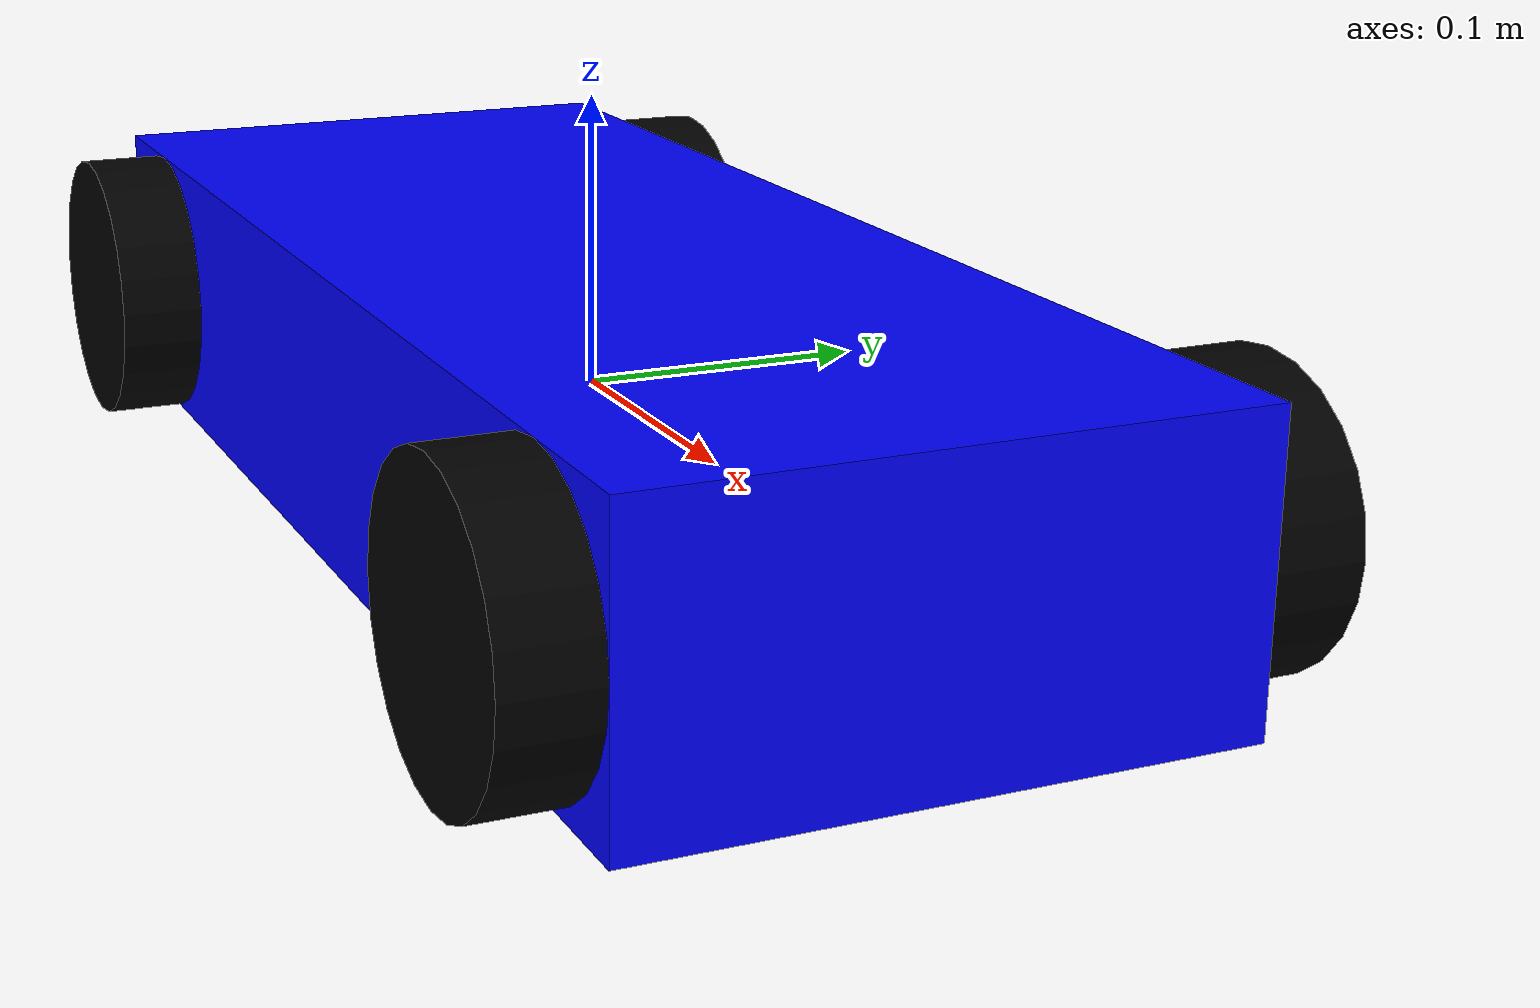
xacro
<?xml version="1.0"?>
<robot xmlns:xacro="http://www.ros.org/wiki/xacro">

    <xacro:include filename="inertial_macros.xacro"/>
<!-- Base Link -->
    <link name="base_link">
        <visual>
            <geometry>
                <box size="0.5 0.2 0.1"/>
            </geometry>
            <material name="blue">
                <color rgba="0 0 1 1"/>
            </material>
        </visual>
    </link>

  <!-- Front Left Wheel -->
    <link name="front_left_wheel">
        <visual>
            <geometry>
                <cylinder radius="0.05" length="0.04"/>
            </geometry>
            <material name="black">
                <color rgba="0 0 0 1"/>
            </material>
        </visual>
    </link>

  <!-- Front Right Wheel -->
    <link name="front_right_wheel">
        <visual>
            <geometry>
                <cylinder radius="0.05" length="0.04"/>
            </geometry>
            <material name="black">
                <color rgba="0 0 0 1"/>
            </material>
        </visual>
    </link>

  <!-- Rear Left Wheel -->
    <link name="rear_left_wheel">
        <visual>
            <geometry>
                <cylinder radius="0.05" length="0.04"/>
            </geometry>
            <material name="black">
                <color rgba="0 0 0 1"/>
            </material>
        </visual>
    </link>

  <!-- Rear Right Wheel -->
    <link name="rear_right_wheel">
        <visual>
            <geometry>
                <cylinder radius="0.05" length="0.04"/>
            </geometry>
            <material name="black">
                <color rgba="0 0 0 1"/>
            </material>
        </visual>
    </link>

<!-- Front Left Wheel Joint (Steering) with motor -->
<joint name="base_to_front_left_wheel" type="revolute">
    <parent link="base_link"/>
    <child link="front_left_wheel"/>
    <origin xyz="0.2 0.11 0" rpy="-${pi/2} 0 0"/>
    <axis xyz="0 0 1"/>
    <dynamics damping="0.1" friction="0.1"/>
    <limit lower="-1.57" upper="1.57" effort="50" velocity="1"/>
</joint>

<!-- Front Right Wheel Joint (Steering) with motor -->
<joint name="base_to_front_right_wheel" type="revolute">
    <parent link="base_link"/>
    <child link="front_right_wheel"/>
    <origin xyz="0.2 -0.11 0" rpy="${pi/2} 0 0"/>
    <axis xyz="0 0 1"/>
    <dynamics damping="0.1" friction="0.1"/>
    <limit lower="-1.57" upper="1.57" effort="50" velocity="1"/>
</joint>

  <!-- Rear Left Wheel Joint (Fixed) -->
    <joint name="base_to_rear_left_wheel" type="continuous">
        <parent link="base_link"/>
        <child link="rear_left_wheel"/>
        <origin xyz="-0.2 0.11 0" rpy="-${pi/2}  0 0"/>
        <axis xyz="0 0 1"/>
    </joint>

  <!-- Rear Right Wheel Joint (Fixed) -->
    <joint name="base_to_rear_right_wheel" type="continuous">
        <parent link="base_link"/>
        <child link="rear_right_wheel"/>
        <origin xyz="-0.2 -0.11 0" rpy="-${pi/2}  0 0"/>
        <axis xyz="0 0 1"/>
    </joint>

</robot>
